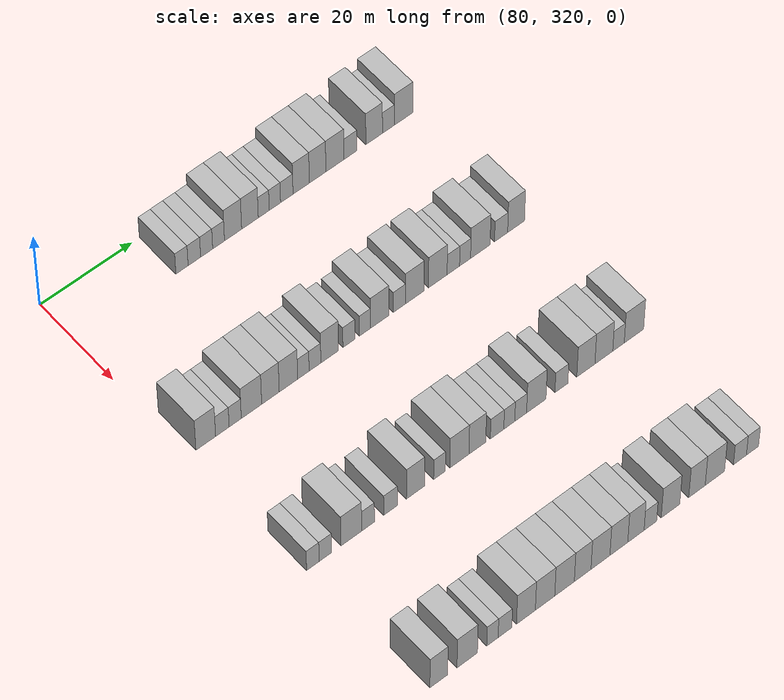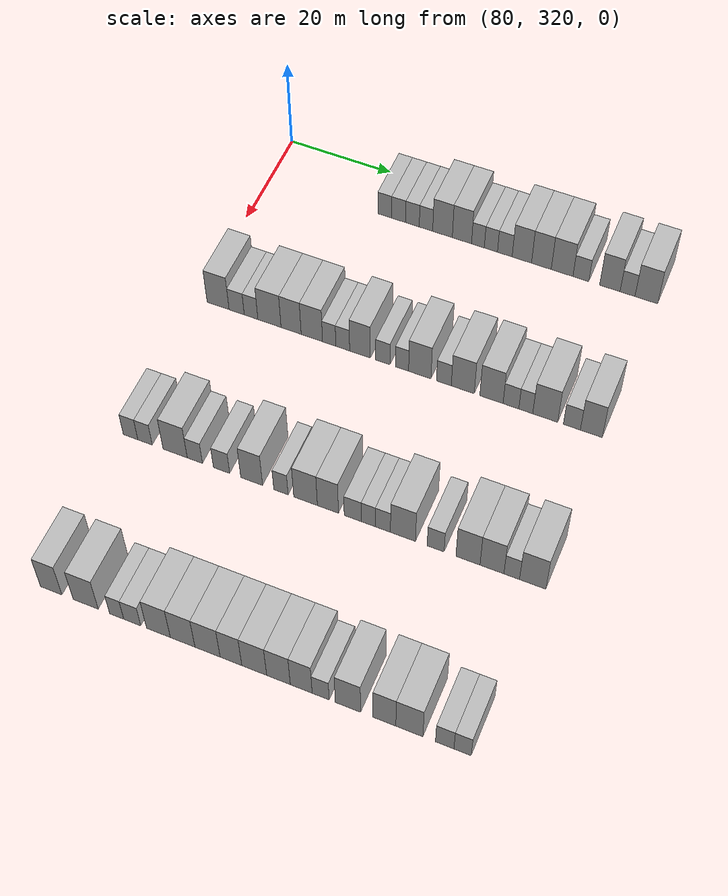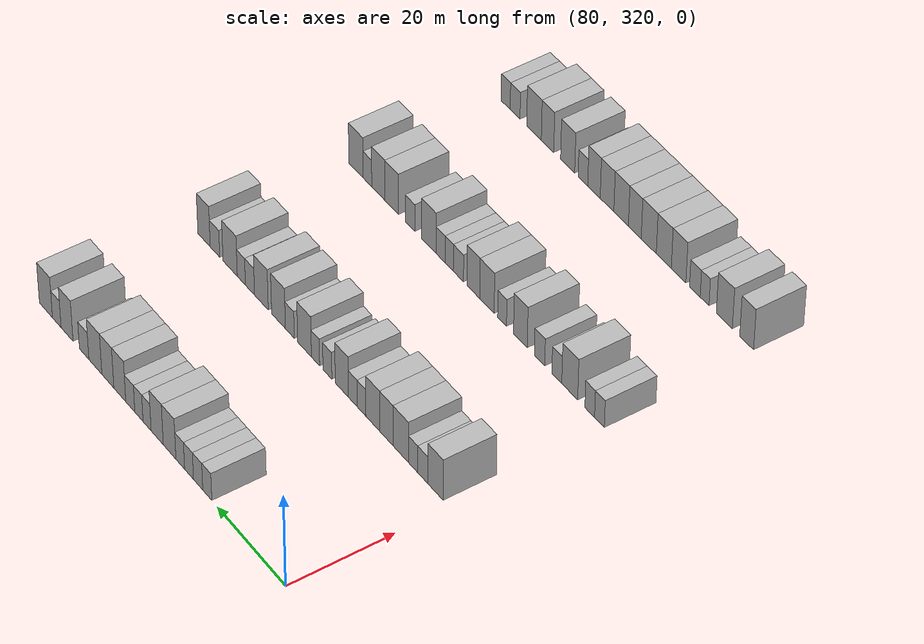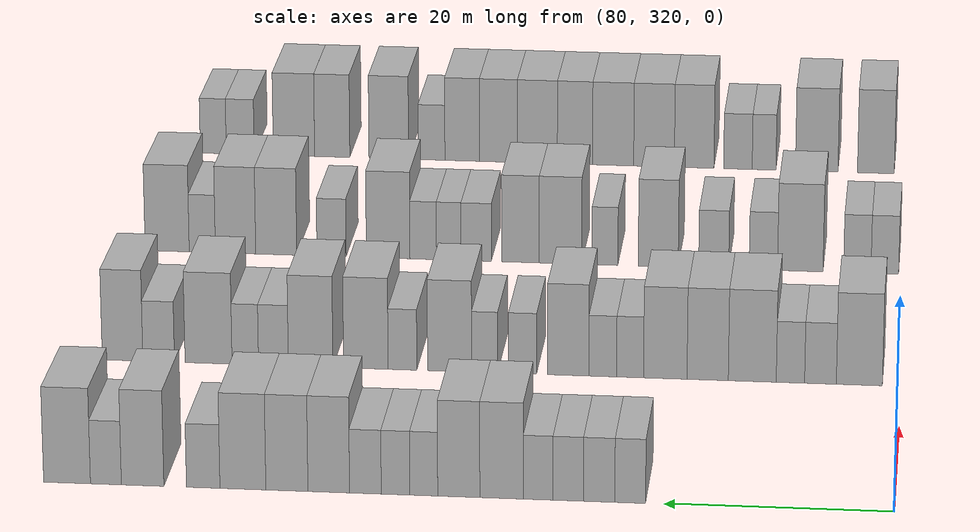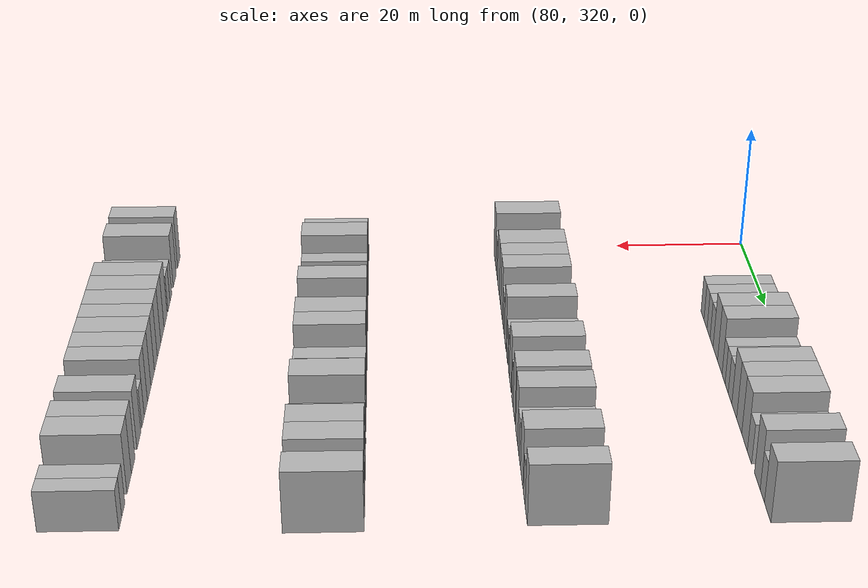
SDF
<sdf version="1.6">
 <world name="default">
  <model name="building_645">
   <static>1</static>
   <pose>85.0000 342.9460 0 0.000000 0.000000 0.000000</pose>
   <link name="link">
    <pose>0 0 3.00 0 0 0</pose>
    <collision name="collision"><geometry><box><size>10.0000 2.6826 6.0000</size></box></geometry></collision>
    <visual name="visual">
     <cast_shadows>0</cast_shadows>
     <geometry><box><size>10.0000 2.6826 6.0000</size></box></geometry>
     <material>
      <script>
       <uri>model://HANNAS_wall/materials/scripts</uri>
       <uri>model://HANNAS_wall/materials/textures</uri>
       <name>vrc/HANNAS_wall</name>
      </script>
     </material>
    </visual>
   </link>
  </model>
  <model name="building_646">
   <static>1</static>
   <pose>85.0000 345.6617 0 0.000000 0.000000 0.000000</pose>
   <link name="link">
    <pose>0 0 3.00 0 0 0</pose>
    <collision name="collision"><geometry><box><size>10.0000 2.7487 6.0000</size></box></geometry></collision>
    <visual name="visual">
     <cast_shadows>0</cast_shadows>
     <geometry><box><size>10.0000 2.7487 6.0000</size></box></geometry>
     <material>
      <script>
       <uri>model://HANNAS_wall/materials/scripts</uri>
       <uri>model://HANNAS_wall/materials/textures</uri>
       <name>vrc/HANNAS_wall</name>
      </script>
     </material>
    </visual>
   </link>
  </model>
  <model name="building_647">
   <static>1</static>
   <pose>85.0000 348.3660 0 0.000000 0.000000 0.000000</pose>
   <link name="link">
    <pose>0 0 3.00 0 0 0</pose>
    <collision name="collision"><geometry><box><size>10.0000 2.6599 6.0000</size></box></geometry></collision>
    <visual name="visual">
     <cast_shadows>0</cast_shadows>
     <geometry><box><size>10.0000 2.6599 6.0000</size></box></geometry>
     <material>
      <script>
       <uri>model://HANNAS_wall/materials/scripts</uri>
       <uri>model://HANNAS_wall/materials/textures</uri>
       <name>vrc/HANNAS_wall</name>
      </script>
     </material>
    </visual>
   </link>
  </model>
  <model name="building_648">
   <static>1</static>
   <pose>85.0000 350.9986 0 0.000000 0.000000 0.000000</pose>
   <link name="link">
    <pose>0 0 3.00 0 0 0</pose>
    <collision name="collision"><geometry><box><size>10.0000 2.6054 6.0000</size></box></geometry></collision>
    <visual name="visual">
     <cast_shadows>0</cast_shadows>
     <geometry><box><size>10.0000 2.6054 6.0000</size></box></geometry>
     <material>
      <script>
       <uri>model://HANNAS_wall/materials/scripts</uri>
       <uri>model://HANNAS_wall/materials/textures</uri>
       <name>vrc/HANNAS_wall</name>
      </script>
     </material>
    </visual>
   </link>
  </model>
  <model name="building_649">
   <static>1</static>
   <pose>85.0000 354.1984 0 0.000000 0.000000 0.000000</pose>
   <link name="link">
    <pose>0 0 4.50 0 0 0</pose>
    <collision name="collision"><geometry><box><size>10.0000 3.7942 9.0000</size></box></geometry></collision>
    <visual name="visual">
     <cast_shadows>0</cast_shadows>
     <geometry><box><size>10.0000 3.7942 9.0000</size></box></geometry>
     <material>
      <script>
       <uri>model://HANNAS_wall/materials/scripts</uri>
       <uri>model://HANNAS_wall/materials/textures</uri>
       <name>vrc/HANNAS_wall</name>
      </script>
     </material>
    </visual>
   </link>
  </model>
  <model name="building_650">
   <static>1</static>
   <pose>85.0000 357.9422 0 0.000000 0.000000 0.000000</pose>
   <link name="link">
    <pose>0 0 4.50 0 0 0</pose>
    <collision name="collision"><geometry><box><size>10.0000 3.6935 9.0000</size></box></geometry></collision>
    <visual name="visual">
     <cast_shadows>0</cast_shadows>
     <geometry><box><size>10.0000 3.6935 9.0000</size></box></geometry>
     <material>
      <script>
       <uri>model://HANNAS_wall/materials/scripts</uri>
       <uri>model://HANNAS_wall/materials/textures</uri>
       <name>vrc/HANNAS_wall</name>
      </script>
     </material>
    </visual>
   </link>
  </model>
  <model name="building_651">
   <static>1</static>
   <pose>85.0000 361.0117 0 0.000000 0.000000 0.000000</pose>
   <link name="link">
    <pose>0 0 3.00 0 0 0</pose>
    <collision name="collision"><geometry><box><size>10.0000 2.4453 6.0000</size></box></geometry></collision>
    <visual name="visual">
     <cast_shadows>0</cast_shadows>
     <geometry><box><size>10.0000 2.4453 6.0000</size></box></geometry>
     <material>
      <script>
       <uri>model://HANNAS_wall/materials/scripts</uri>
       <uri>model://HANNAS_wall/materials/textures</uri>
       <name>vrc/HANNAS_wall</name>
      </script>
     </material>
    </visual>
   </link>
  </model>
  <model name="building_652">
   <static>1</static>
   <pose>85.0000 363.4918 0 0.000000 0.000000 0.000000</pose>
   <link name="link">
    <pose>0 0 3.00 0 0 0</pose>
    <collision name="collision"><geometry><box><size>10.0000 2.5149 6.0000</size></box></geometry></collision>
    <visual name="visual">
     <cast_shadows>0</cast_shadows>
     <geometry><box><size>10.0000 2.5149 6.0000</size></box></geometry>
     <material>
      <script>
       <uri>model://HANNAS_wall/materials/scripts</uri>
       <uri>model://HANNAS_wall/materials/textures</uri>
       <name>vrc/HANNAS_wall</name>
      </script>
     </material>
    </visual>
   </link>
  </model>
  <model name="building_653">
   <static>1</static>
   <pose>85.0000 366.1435 0 0.000000 0.000000 0.000000</pose>
   <link name="link">
    <pose>0 0 3.00 0 0 0</pose>
    <collision name="collision"><geometry><box><size>10.0000 2.7886 6.0000</size></box></geometry></collision>
    <visual name="visual">
     <cast_shadows>0</cast_shadows>
     <geometry><box><size>10.0000 2.7886 6.0000</size></box></geometry>
     <material>
      <script>
       <uri>model://HANNAS_wall/materials/scripts</uri>
       <uri>model://HANNAS_wall/materials/textures</uri>
       <name>vrc/HANNAS_wall</name>
      </script>
     </material>
    </visual>
   </link>
  </model>
  <model name="building_654">
   <static>1</static>
   <pose>85.0000 369.3707 0 0.000000 0.000000 0.000000</pose>
   <link name="link">
    <pose>0 0 4.50 0 0 0</pose>
    <collision name="collision"><geometry><box><size>10.0000 3.6657 9.0000</size></box></geometry></collision>
    <visual name="visual">
     <cast_shadows>0</cast_shadows>
     <geometry><box><size>10.0000 3.6657 9.0000</size></box></geometry>
     <material>
      <script>
       <uri>model://HANNAS_wall/materials/scripts</uri>
       <uri>model://HANNAS_wall/materials/textures</uri>
       <name>vrc/HANNAS_wall</name>
      </script>
     </material>
    </visual>
   </link>
  </model>
  <model name="building_655">
   <static>1</static>
   <pose>85.0000 373.0613 0 0.000000 0.000000 0.000000</pose>
   <link name="link">
    <pose>0 0 4.50 0 0 0</pose>
    <collision name="collision"><geometry><box><size>10.0000 3.7155 9.0000</size></box></geometry></collision>
    <visual name="visual">
     <cast_shadows>0</cast_shadows>
     <geometry><box><size>10.0000 3.7155 9.0000</size></box></geometry>
     <material>
      <script>
       <uri>model://HANNAS_wall/materials/scripts</uri>
       <uri>model://HANNAS_wall/materials/textures</uri>
       <name>vrc/HANNAS_wall</name>
      </script>
     </material>
    </visual>
   </link>
  </model>
  <model name="building_656">
   <static>1</static>
   <pose>85.0000 376.9481 0 0.000000 0.000000 0.000000</pose>
   <link name="link">
    <pose>0 0 4.50 0 0 0</pose>
    <collision name="collision"><geometry><box><size>10.0000 4.0580 9.0000</size></box></geometry></collision>
    <visual name="visual">
     <cast_shadows>0</cast_shadows>
     <geometry><box><size>10.0000 4.0580 9.0000</size></box></geometry>
     <material>
      <script>
       <uri>model://HANNAS_wall/materials/scripts</uri>
       <uri>model://HANNAS_wall/materials/textures</uri>
       <name>vrc/HANNAS_wall</name>
      </script>
     </material>
    </visual>
   </link>
  </model>
  <model name="building_657">
   <static>1</static>
   <pose>85.0000 380.4580 0 0.000000 0.000000 0.000000</pose>
   <link name="link">
    <pose>0 0 3.00 0 0 0</pose>
    <collision name="collision"><geometry><box><size>10.0000 2.9619 6.0000</size></box></geometry></collision>
    <visual name="visual">
     <cast_shadows>0</cast_shadows>
     <geometry><box><size>10.0000 2.9619 6.0000</size></box></geometry>
     <material>
      <script>
       <uri>model://HANNAS_wall/materials/scripts</uri>
       <uri>model://HANNAS_wall/materials/textures</uri>
       <name>vrc/HANNAS_wall</name>
      </script>
     </material>
    </visual>
   </link>
  </model>
  <model name="building_658">
   <static>1</static>
   <pose>85.0000 385.8234 0 0.000000 0.000000 0.000000</pose>
   <link name="link">
    <pose>0 0 4.50 0 0 0</pose>
    <collision name="collision"><geometry><box><size>10.0000 3.7688 9.0000</size></box></geometry></collision>
    <visual name="visual">
     <cast_shadows>0</cast_shadows>
     <geometry><box><size>10.0000 3.7688 9.0000</size></box></geometry>
     <material>
      <script>
       <uri>model://HANNAS_wall/materials/scripts</uri>
       <uri>model://HANNAS_wall/materials/textures</uri>
       <name>vrc/HANNAS_wall</name>
      </script>
     </material>
    </visual>
   </link>
  </model>
  <model name="building_659">
   <static>1</static>
   <pose>85.0000 389.0815 0 0.000000 0.000000 0.000000</pose>
   <link name="link">
    <pose>0 0 3.00 0 0 0</pose>
    <collision name="collision"><geometry><box><size>10.0000 2.7474 6.0000</size></box></geometry></collision>
    <visual name="visual">
     <cast_shadows>0</cast_shadows>
     <geometry><box><size>10.0000 2.7474 6.0000</size></box></geometry>
     <material>
      <script>
       <uri>model://HANNAS_wall/materials/scripts</uri>
       <uri>model://HANNAS_wall/materials/textures</uri>
       <name>vrc/HANNAS_wall</name>
      </script>
     </material>
    </visual>
   </link>
  </model>
  <model name="building_660">
   <static>1</static>
   <pose>85.0000 392.5330 0 0.000000 0.000000 0.000000</pose>
   <link name="link">
    <pose>0 0 4.50 0 0 0</pose>
    <collision name="collision"><geometry><box><size>10.0000 4.1556 9.0000</size></box></geometry></collision>
    <visual name="visual">
     <cast_shadows>0</cast_shadows>
     <geometry><box><size>10.0000 4.1556 9.0000</size></box></geometry>
     <material>
      <script>
       <uri>model://HANNAS_wall/materials/scripts</uri>
       <uri>model://HANNAS_wall/materials/textures</uri>
       <name>vrc/HANNAS_wall</name>
      </script>
     </material>
    </visual>
   </link>
  </model>
  <model name="building_871">
   <static>1</static>
   <pose>115.0000 323.8803 0 0.000000 0.000000 0.000000</pose>
   <link name="link">
    <pose>0 0 4.50 0 0 0</pose>
    <collision name="collision"><geometry><box><size>10.0000 4.2369 9.0000</size></box></geometry></collision>
    <visual name="visual">
     <cast_shadows>0</cast_shadows>
     <geometry><box><size>10.0000 4.2369 9.0000</size></box></geometry>
     <material>
      <script>
       <uri>model://HANNAS_wall/materials/scripts</uri>
       <uri>model://HANNAS_wall/materials/textures</uri>
       <name>vrc/HANNAS_wall</name>
      </script>
     </material>
    </visual>
   </link>
  </model>
  <model name="building_872">
   <static>1</static>
   <pose>115.0000 327.4600 0 0.000000 0.000000 0.000000</pose>
   <link name="link">
    <pose>0 0 3.00 0 0 0</pose>
    <collision name="collision"><geometry><box><size>10.0000 2.9225 6.0000</size></box></geometry></collision>
    <visual name="visual">
     <cast_shadows>0</cast_shadows>
     <geometry><box><size>10.0000 2.9225 6.0000</size></box></geometry>
     <material>
      <script>
       <uri>model://HANNAS_wall/materials/scripts</uri>
       <uri>model://HANNAS_wall/materials/textures</uri>
       <name>vrc/HANNAS_wall</name>
      </script>
     </material>
    </visual>
   </link>
  </model>
  <model name="building_873">
   <static>1</static>
   <pose>115.0000 330.2283 0 0.000000 0.000000 0.000000</pose>
   <link name="link">
    <pose>0 0 3.00 0 0 0</pose>
    <collision name="collision"><geometry><box><size>10.0000 2.6142 6.0000</size></box></geometry></collision>
    <visual name="visual">
     <cast_shadows>0</cast_shadows>
     <geometry><box><size>10.0000 2.6142 6.0000</size></box></geometry>
     <material>
      <script>
       <uri>model://HANNAS_wall/materials/scripts</uri>
       <uri>model://HANNAS_wall/materials/textures</uri>
       <name>vrc/HANNAS_wall</name>
      </script>
     </material>
    </visual>
   </link>
  </model>
  <model name="building_874">
   <static>1</static>
   <pose>115.0000 333.7476 0 0.000000 0.000000 0.000000</pose>
   <link name="link">
    <pose>0 0 4.50 0 0 0</pose>
    <collision name="collision"><geometry><box><size>10.0000 4.4245 9.0000</size></box></geometry></collision>
    <visual name="visual">
     <cast_shadows>0</cast_shadows>
     <geometry><box><size>10.0000 4.4245 9.0000</size></box></geometry>
     <material>
      <script>
       <uri>model://HANNAS_wall/materials/scripts</uri>
       <uri>model://HANNAS_wall/materials/textures</uri>
       <name>vrc/HANNAS_wall</name>
      </script>
     </material>
    </visual>
   </link>
  </model>
  <model name="building_875">
   <static>1</static>
   <pose>115.0000 337.8681 0 0.000000 0.000000 0.000000</pose>
   <link name="link">
    <pose>0 0 4.50 0 0 0</pose>
    <collision name="collision"><geometry><box><size>10.0000 3.8164 9.0000</size></box></geometry></collision>
    <visual name="visual">
     <cast_shadows>0</cast_shadows>
     <geometry><box><size>10.0000 3.8164 9.0000</size></box></geometry>
     <material>
      <script>
       <uri>model://HANNAS_wall/materials/scripts</uri>
       <uri>model://HANNAS_wall/materials/textures</uri>
       <name>vrc/HANNAS_wall</name>
      </script>
     </material>
    </visual>
   </link>
  </model>
  <model name="building_876">
   <static>1</static>
   <pose>115.0000 341.7890 0 0.000000 0.000000 0.000000</pose>
   <link name="link">
    <pose>0 0 4.50 0 0 0</pose>
    <collision name="collision"><geometry><box><size>10.0000 4.0255 9.0000</size></box></geometry></collision>
    <visual name="visual">
     <cast_shadows>0</cast_shadows>
     <geometry><box><size>10.0000 4.0255 9.0000</size></box></geometry>
     <material>
      <script>
       <uri>model://HANNAS_wall/materials/scripts</uri>
       <uri>model://HANNAS_wall/materials/textures</uri>
       <name>vrc/HANNAS_wall</name>
      </script>
     </material>
    </visual>
   </link>
  </model>
  <model name="building_877">
   <static>1</static>
   <pose>115.0000 345.0506 0 0.000000 0.000000 0.000000</pose>
   <link name="link">
    <pose>0 0 3.00 0 0 0</pose>
    <collision name="collision"><geometry><box><size>10.0000 2.4976 6.0000</size></box></geometry></collision>
    <visual name="visual">
     <cast_shadows>0</cast_shadows>
     <geometry><box><size>10.0000 2.4976 6.0000</size></box></geometry>
     <material>
      <script>
       <uri>model://HANNAS_wall/materials/scripts</uri>
       <uri>model://HANNAS_wall/materials/textures</uri>
       <name>vrc/HANNAS_wall</name>
      </script>
     </material>
    </visual>
   </link>
  </model>
  <model name="building_878">
   <static>1</static>
   <pose>115.0000 347.5885 0 0.000000 0.000000 0.000000</pose>
   <link name="link">
    <pose>0 0 3.00 0 0 0</pose>
    <collision name="collision"><geometry><box><size>10.0000 2.5782 6.0000</size></box></geometry></collision>
    <visual name="visual">
     <cast_shadows>0</cast_shadows>
     <geometry><box><size>10.0000 2.5782 6.0000</size></box></geometry>
     <material>
      <script>
       <uri>model://HANNAS_wall/materials/scripts</uri>
       <uri>model://HANNAS_wall/materials/textures</uri>
       <name>vrc/HANNAS_wall</name>
      </script>
     </material>
    </visual>
   </link>
  </model>
  <model name="building_879">
   <static>1</static>
   <pose>115.0000 350.8021 0 0.000000 0.000000 0.000000</pose>
   <link name="link">
    <pose>0 0 4.50 0 0 0</pose>
    <collision name="collision"><geometry><box><size>10.0000 3.8489 9.0000</size></box></geometry></collision>
    <visual name="visual">
     <cast_shadows>0</cast_shadows>
     <geometry><box><size>10.0000 3.8489 9.0000</size></box></geometry>
     <material>
      <script>
       <uri>model://HANNAS_wall/materials/scripts</uri>
       <uri>model://HANNAS_wall/materials/textures</uri>
       <name>vrc/HANNAS_wall</name>
      </script>
     </material>
    </visual>
   </link>
  </model>
  <model name="building_880">
   <static>1</static>
   <pose>115.0000 355.0364 0 0.000000 0.000000 0.000000</pose>
   <link name="link">
    <pose>0 0 3.00 0 0 0</pose>
    <collision name="collision"><geometry><box><size>10.0000 2.6198 6.0000</size></box></geometry></collision>
    <visual name="visual">
     <cast_shadows>0</cast_shadows>
     <geometry><box><size>10.0000 2.6198 6.0000</size></box></geometry>
     <material>
      <script>
       <uri>model://HANNAS_wall/materials/scripts</uri>
       <uri>model://HANNAS_wall/materials/textures</uri>
       <name>vrc/HANNAS_wall</name>
      </script>
     </material>
    </visual>
   </link>
  </model>
  <model name="building_881">
   <static>1</static>
   <pose>115.0000 358.5620 0 0.000000 0.000000 0.000000</pose>
   <link name="link">
    <pose>0 0 3.00 0 0 0</pose>
    <collision name="collision"><geometry><box><size>10.0000 2.4314 6.0000</size></box></geometry></collision>
    <visual name="visual">
     <cast_shadows>0</cast_shadows>
     <geometry><box><size>10.0000 2.4314 6.0000</size></box></geometry>
     <material>
      <script>
       <uri>model://HANNAS_wall/materials/scripts</uri>
       <uri>model://HANNAS_wall/materials/textures</uri>
       <name>vrc/HANNAS_wall</name>
      </script>
     </material>
    </visual>
   </link>
  </model>
  <model name="building_882">
   <static>1</static>
   <pose>115.0000 361.8263 0 0.000000 0.000000 0.000000</pose>
   <link name="link">
    <pose>0 0 4.50 0 0 0</pose>
    <collision name="collision"><geometry><box><size>10.0000 4.0972 9.0000</size></box></geometry></collision>
    <visual name="visual">
     <cast_shadows>0</cast_shadows>
     <geometry><box><size>10.0000 4.0972 9.0000</size></box></geometry>
     <material>
      <script>
       <uri>model://HANNAS_wall/materials/scripts</uri>
       <uri>model://HANNAS_wall/materials/textures</uri>
       <name>vrc/HANNAS_wall</name>
      </script>
     </material>
    </visual>
   </link>
  </model>
  <model name="building_883">
   <static>1</static>
   <pose>115.0000 366.2160 0 0.000000 0.000000 0.000000</pose>
   <link name="link">
    <pose>0 0 3.00 0 0 0</pose>
    <collision name="collision"><geometry><box><size>10.0000 2.6822 6.0000</size></box></geometry></collision>
    <visual name="visual">
     <cast_shadows>0</cast_shadows>
     <geometry><box><size>10.0000 2.6822 6.0000</size></box></geometry>
     <material>
      <script>
       <uri>model://HANNAS_wall/materials/scripts</uri>
       <uri>model://HANNAS_wall/materials/textures</uri>
       <name>vrc/HANNAS_wall</name>
      </script>
     </material>
    </visual>
   </link>
  </model>
  <model name="building_884">
   <static>1</static>
   <pose>115.0000 369.6368 0 0.000000 0.000000 0.000000</pose>
   <link name="link">
    <pose>0 0 4.50 0 0 0</pose>
    <collision name="collision"><geometry><box><size>10.0000 4.1593 9.0000</size></box></geometry></collision>
    <visual name="visual">
     <cast_shadows>0</cast_shadows>
     <geometry><box><size>10.0000 4.1593 9.0000</size></box></geometry>
     <material>
      <script>
       <uri>model://HANNAS_wall/materials/scripts</uri>
       <uri>model://HANNAS_wall/materials/textures</uri>
       <name>vrc/HANNAS_wall</name>
      </script>
     </material>
    </visual>
   </link>
  </model>
  <model name="building_885">
   <static>1</static>
   <pose>115.0000 374.8030 0 0.000000 0.000000 0.000000</pose>
   <link name="link">
    <pose>0 0 4.50 0 0 0</pose>
    <collision name="collision"><geometry><box><size>10.0000 4.1731 9.0000</size></box></geometry></collision>
    <visual name="visual">
     <cast_shadows>0</cast_shadows>
     <geometry><box><size>10.0000 4.1731 9.0000</size></box></geometry>
     <material>
      <script>
       <uri>model://HANNAS_wall/materials/scripts</uri>
       <uri>model://HANNAS_wall/materials/textures</uri>
       <name>vrc/HANNAS_wall</name>
      </script>
     </material>
    </visual>
   </link>
  </model>
  <model name="building_886">
   <static>1</static>
   <pose>115.0000 378.2895 0 0.000000 0.000000 0.000000</pose>
   <link name="link">
    <pose>0 0 3.00 0 0 0</pose>
    <collision name="collision"><geometry><box><size>10.0000 2.8000 6.0000</size></box></geometry></collision>
    <visual name="visual">
     <cast_shadows>0</cast_shadows>
     <geometry><box><size>10.0000 2.8000 6.0000</size></box></geometry>
     <material>
      <script>
       <uri>model://HANNAS_wall/materials/scripts</uri>
       <uri>model://HANNAS_wall/materials/textures</uri>
       <name>vrc/HANNAS_wall</name>
      </script>
     </material>
    </visual>
   </link>
  </model>
  <model name="building_887">
   <static>1</static>
   <pose>115.0000 380.9318 0 0.000000 0.000000 0.000000</pose>
   <link name="link">
    <pose>0 0 3.00 0 0 0</pose>
    <collision name="collision"><geometry><box><size>10.0000 2.4845 6.0000</size></box></geometry></collision>
    <visual name="visual">
     <cast_shadows>0</cast_shadows>
     <geometry><box><size>10.0000 2.4845 6.0000</size></box></geometry>
     <material>
      <script>
       <uri>model://HANNAS_wall/materials/scripts</uri>
       <uri>model://HANNAS_wall/materials/textures</uri>
       <name>vrc/HANNAS_wall</name>
      </script>
     </material>
    </visual>
   </link>
  </model>
  <model name="building_888">
   <static>1</static>
   <pose>115.0000 384.3796 0 0.000000 0.000000 0.000000</pose>
   <link name="link">
    <pose>0 0 4.50 0 0 0</pose>
    <collision name="collision"><geometry><box><size>10.0000 4.4112 9.0000</size></box></geometry></collision>
    <visual name="visual">
     <cast_shadows>0</cast_shadows>
     <geometry><box><size>10.0000 4.4112 9.0000</size></box></geometry>
     <material>
      <script>
       <uri>model://HANNAS_wall/materials/scripts</uri>
       <uri>model://HANNAS_wall/materials/textures</uri>
       <name>vrc/HANNAS_wall</name>
      </script>
     </material>
    </visual>
   </link>
  </model>
  <model name="building_889">
   <static>1</static>
   <pose>115.0000 389.0710 0 0.000000 0.000000 0.000000</pose>
   <link name="link">
    <pose>0 0 3.00 0 0 0</pose>
    <collision name="collision"><geometry><box><size>10.0000 2.9715 6.0000</size></box></geometry></collision>
    <visual name="visual">
     <cast_shadows>0</cast_shadows>
     <geometry><box><size>10.0000 2.9715 6.0000</size></box></geometry>
     <material>
      <script>
       <uri>model://HANNAS_wall/materials/scripts</uri>
       <uri>model://HANNAS_wall/materials/textures</uri>
       <name>vrc/HANNAS_wall</name>
      </script>
     </material>
    </visual>
   </link>
  </model>
  <model name="building_890">
   <static>1</static>
   <pose>115.0000 392.4711 0 0.000000 0.000000 0.000000</pose>
   <link name="link">
    <pose>0 0 4.50 0 0 0</pose>
    <collision name="collision"><geometry><box><size>10.0000 3.8289 9.0000</size></box></geometry></collision>
    <visual name="visual">
     <cast_shadows>0</cast_shadows>
     <geometry><box><size>10.0000 3.8289 9.0000</size></box></geometry>
     <material>
      <script>
       <uri>model://HANNAS_wall/materials/scripts</uri>
       <uri>model://HANNAS_wall/materials/textures</uri>
       <name>vrc/HANNAS_wall</name>
      </script>
     </material>
    </visual>
   </link>
  </model>
  <model name="building_1100">
   <static>1</static>
   <pose>145.0000 322.2565 0 0.000000 0.000000 0.000000</pose>
   <link name="link">
    <pose>0 0 3.00 0 0 0</pose>
    <collision name="collision"><geometry><box><size>10.0000 2.6858 6.0000</size></box></geometry></collision>
    <visual name="visual">
     <cast_shadows>0</cast_shadows>
     <geometry><box><size>10.0000 2.6858 6.0000</size></box></geometry>
     <material>
      <script>
       <uri>model://HANNAS_wall/materials/scripts</uri>
       <uri>model://HANNAS_wall/materials/textures</uri>
       <name>vrc/HANNAS_wall</name>
      </script>
     </material>
    </visual>
   </link>
  </model>
  <model name="building_1101">
   <static>1</static>
   <pose>145.0000 324.9366 0 0.000000 0.000000 0.000000</pose>
   <link name="link">
    <pose>0 0 3.00 0 0 0</pose>
    <collision name="collision"><geometry><box><size>10.0000 2.6743 6.0000</size></box></geometry></collision>
    <visual name="visual">
     <cast_shadows>0</cast_shadows>
     <geometry><box><size>10.0000 2.6743 6.0000</size></box></geometry>
     <material>
      <script>
       <uri>model://HANNAS_wall/materials/scripts</uri>
       <uri>model://HANNAS_wall/materials/textures</uri>
       <name>vrc/HANNAS_wall</name>
      </script>
     </material>
    </visual>
   </link>
  </model>
  <model name="building_1102">
   <static>1</static>
   <pose>145.0000 330.4941 0 0.000000 0.000000 0.000000</pose>
   <link name="link">
    <pose>0 0 4.50 0 0 0</pose>
    <collision name="collision"><geometry><box><size>10.0000 4.4407 9.0000</size></box></geometry></collision>
    <visual name="visual">
     <cast_shadows>0</cast_shadows>
     <geometry><box><size>10.0000 4.4407 9.0000</size></box></geometry>
     <material>
      <script>
       <uri>model://HANNAS_wall/materials/scripts</uri>
       <uri>model://HANNAS_wall/materials/textures</uri>
       <name>vrc/HANNAS_wall</name>
      </script>
     </material>
    </visual>
   </link>
  </model>
  <model name="building_1103">
   <static>1</static>
   <pose>145.0000 334.0988 0 0.000000 0.000000 0.000000</pose>
   <link name="link">
    <pose>0 0 3.00 0 0 0</pose>
    <collision name="collision"><geometry><box><size>10.0000 2.7689 6.0000</size></box></geometry></collision>
    <visual name="visual">
     <cast_shadows>0</cast_shadows>
     <geometry><box><size>10.0000 2.7689 6.0000</size></box></geometry>
     <material>
      <script>
       <uri>model://HANNAS_wall/materials/scripts</uri>
       <uri>model://HANNAS_wall/materials/textures</uri>
       <name>vrc/HANNAS_wall</name>
      </script>
     </material>
    </visual>
   </link>
  </model>
  <model name="building_1104">
   <static>1</static>
   <pose>145.0000 338.9540 0 0.000000 0.000000 0.000000</pose>
   <link name="link">
    <pose>0 0 3.00 0 0 0</pose>
    <collision name="collision"><geometry><box><size>10.0000 2.9414 6.0000</size></box></geometry></collision>
    <visual name="visual">
     <cast_shadows>0</cast_shadows>
     <geometry><box><size>10.0000 2.9414 6.0000</size></box></geometry>
     <material>
      <script>
       <uri>model://HANNAS_wall/materials/scripts</uri>
       <uri>model://HANNAS_wall/materials/textures</uri>
       <name>vrc/HANNAS_wall</name>
      </script>
     </material>
    </visual>
   </link>
  </model>
  <model name="building_1105">
   <static>1</static>
   <pose>145.0000 344.3824 0 0.000000 0.000000 0.000000</pose>
   <link name="link">
    <pose>0 0 4.50 0 0 0</pose>
    <collision name="collision"><geometry><box><size>10.0000 3.9154 9.0000</size></box></geometry></collision>
    <visual name="visual">
     <cast_shadows>0</cast_shadows>
     <geometry><box><size>10.0000 3.9154 9.0000</size></box></geometry>
     <material>
      <script>
       <uri>model://HANNAS_wall/materials/scripts</uri>
       <uri>model://HANNAS_wall/materials/textures</uri>
       <name>vrc/HANNAS_wall</name>
      </script>
     </material>
    </visual>
   </link>
  </model>
  <model name="building_1106">
   <static>1</static>
   <pose>145.0000 349.6164 0 0.000000 0.000000 0.000000</pose>
   <link name="link">
    <pose>0 0 3.00 0 0 0</pose>
    <collision name="collision"><geometry><box><size>10.0000 2.5526 6.0000</size></box></geometry></collision>
    <visual name="visual">
     <cast_shadows>0</cast_shadows>
     <geometry><box><size>10.0000 2.5526 6.0000</size></box></geometry>
     <material>
      <script>
       <uri>model://HANNAS_wall/materials/scripts</uri>
       <uri>model://HANNAS_wall/materials/textures</uri>
       <name>vrc/HANNAS_wall</name>
      </script>
     </material>
    </visual>
   </link>
  </model>
  <model name="building_1107">
   <static>1</static>
   <pose>145.0000 353.9836 0 0.000000 0.000000 0.000000</pose>
   <link name="link">
    <pose>0 0 4.50 0 0 0</pose>
    <collision name="collision"><geometry><box><size>10.0000 4.1817 9.0000</size></box></geometry></collision>
    <visual name="visual">
     <cast_shadows>0</cast_shadows>
     <geometry><box><size>10.0000 4.1817 9.0000</size></box></geometry>
     <material>
      <script>
       <uri>model://HANNAS_wall/materials/scripts</uri>
       <uri>model://HANNAS_wall/materials/textures</uri>
       <name>vrc/HANNAS_wall</name>
      </script>
     </material>
    </visual>
   </link>
  </model>
  <model name="building_1108">
   <static>1</static>
   <pose>145.0000 357.9286 0 0.000000 0.000000 0.000000</pose>
   <link name="link">
    <pose>0 0 4.50 0 0 0</pose>
    <collision name="collision"><geometry><box><size>10.0000 3.7084 9.0000</size></box></geometry></collision>
    <visual name="visual">
     <cast_shadows>0</cast_shadows>
     <geometry><box><size>10.0000 3.7084 9.0000</size></box></geometry>
     <material>
      <script>
       <uri>model://HANNAS_wall/materials/scripts</uri>
       <uri>model://HANNAS_wall/materials/textures</uri>
       <name>vrc/HANNAS_wall</name>
      </script>
     </material>
    </visual>
   </link>
  </model>
  <model name="building_1109">
   <static>1</static>
   <pose>145.0000 362.2733 0 0.000000 0.000000 0.000000</pose>
   <link name="link">
    <pose>0 0 3.00 0 0 0</pose>
    <collision name="collision"><geometry><box><size>10.0000 2.9811 6.0000</size></box></geometry></collision>
    <visual name="visual">
     <cast_shadows>0</cast_shadows>
     <geometry><box><size>10.0000 2.9811 6.0000</size></box></geometry>
     <material>
      <script>
       <uri>model://HANNAS_wall/materials/scripts</uri>
       <uri>model://HANNAS_wall/materials/textures</uri>
       <name>vrc/HANNAS_wall</name>
      </script>
     </material>
    </visual>
   </link>
  </model>
  <model name="building_1110">
   <static>1</static>
   <pose>145.0000 364.9773 0 0.000000 0.000000 0.000000</pose>
   <link name="link">
    <pose>0 0 3.00 0 0 0</pose>
    <collision name="collision"><geometry><box><size>10.0000 2.4268 6.0000</size></box></geometry></collision>
    <visual name="visual">
     <cast_shadows>0</cast_shadows>
     <geometry><box><size>10.0000 2.4268 6.0000</size></box></geometry>
     <material>
      <script>
       <uri>model://HANNAS_wall/materials/scripts</uri>
       <uri>model://HANNAS_wall/materials/textures</uri>
       <name>vrc/HANNAS_wall</name>
      </script>
     </material>
    </visual>
   </link>
  </model>
  <model name="building_1111">
   <static>1</static>
   <pose>145.0000 367.5016 0 0.000000 0.000000 0.000000</pose>
   <link name="link">
    <pose>0 0 3.00 0 0 0</pose>
    <collision name="collision"><geometry><box><size>10.0000 2.6219 6.0000</size></box></geometry></collision>
    <visual name="visual">
     <cast_shadows>0</cast_shadows>
     <geometry><box><size>10.0000 2.6219 6.0000</size></box></geometry>
     <material>
      <script>
       <uri>model://HANNAS_wall/materials/scripts</uri>
       <uri>model://HANNAS_wall/materials/textures</uri>
       <name>vrc/HANNAS_wall</name>
      </script>
     </material>
    </visual>
   </link>
  </model>
  <model name="building_1112">
   <static>1</static>
   <pose>145.0000 370.9667 0 0.000000 0.000000 0.000000</pose>
   <link name="link">
    <pose>0 0 4.50 0 0 0</pose>
    <collision name="collision"><geometry><box><size>10.0000 4.3083 9.0000</size></box></geometry></collision>
    <visual name="visual">
     <cast_shadows>0</cast_shadows>
     <geometry><box><size>10.0000 4.3083 9.0000</size></box></geometry>
     <material>
      <script>
       <uri>model://HANNAS_wall/materials/scripts</uri>
       <uri>model://HANNAS_wall/materials/textures</uri>
       <name>vrc/HANNAS_wall</name>
      </script>
     </material>
    </visual>
   </link>
  </model>
  <model name="building_1113">
   <static>1</static>
   <pose>145.0000 376.5680 0 0.000000 0.000000 0.000000</pose>
   <link name="link">
    <pose>0 0 3.00 0 0 0</pose>
    <collision name="collision"><geometry><box><size>10.0000 2.8942 6.0000</size></box></geometry></collision>
    <visual name="visual">
     <cast_shadows>0</cast_shadows>
     <geometry><box><size>10.0000 2.8942 6.0000</size></box></geometry>
     <material>
      <script>
       <uri>model://HANNAS_wall/materials/scripts</uri>
       <uri>model://HANNAS_wall/materials/textures</uri>
       <name>vrc/HANNAS_wall</name>
      </script>
     </material>
    </visual>
   </link>
  </model>
  <model name="building_1114">
   <static>1</static>
   <pose>145.0000 382.0502 0 0.000000 0.000000 0.000000</pose>
   <link name="link">
    <pose>0 0 4.50 0 0 0</pose>
    <collision name="collision"><geometry><box><size>10.0000 4.0703 9.0000</size></box></geometry></collision>
    <visual name="visual">
     <cast_shadows>0</cast_shadows>
     <geometry><box><size>10.0000 4.0703 9.0000</size></box></geometry>
     <material>
      <script>
       <uri>model://HANNAS_wall/materials/scripts</uri>
       <uri>model://HANNAS_wall/materials/textures</uri>
       <name>vrc/HANNAS_wall</name>
      </script>
     </material>
    </visual>
   </link>
  </model>
  <model name="building_1115">
   <static>1</static>
   <pose>145.0000 386.0904 0 0.000000 0.000000 0.000000</pose>
   <link name="link">
    <pose>0 0 4.50 0 0 0</pose>
    <collision name="collision"><geometry><box><size>10.0000 4.0100 9.0000</size></box></geometry></collision>
    <visual name="visual">
     <cast_shadows>0</cast_shadows>
     <geometry><box><size>10.0000 4.0100 9.0000</size></box></geometry>
     <material>
      <script>
       <uri>model://HANNAS_wall/materials/scripts</uri>
       <uri>model://HANNAS_wall/materials/textures</uri>
       <name>vrc/HANNAS_wall</name>
      </script>
     </material>
    </visual>
   </link>
  </model>
  <model name="building_1116">
   <static>1</static>
   <pose>145.0000 389.3971 0 0.000000 0.000000 0.000000</pose>
   <link name="link">
    <pose>0 0 3.00 0 0 0</pose>
    <collision name="collision"><geometry><box><size>10.0000 2.6034 6.0000</size></box></geometry></collision>
    <visual name="visual">
     <cast_shadows>0</cast_shadows>
     <geometry><box><size>10.0000 2.6034 6.0000</size></box></geometry>
     <material>
      <script>
       <uri>model://HANNAS_wall/materials/scripts</uri>
       <uri>model://HANNAS_wall/materials/textures</uri>
       <name>vrc/HANNAS_wall</name>
      </script>
     </material>
    </visual>
   </link>
  </model>
  <model name="building_1117">
   <static>1</static>
   <pose>145.0000 392.8926 0 0.000000 0.000000 0.000000</pose>
   <link name="link">
    <pose>0 0 4.50 0 0 0</pose>
    <collision name="collision"><geometry><box><size>10.0000 4.3876 9.0000</size></box></geometry></collision>
    <visual name="visual">
     <cast_shadows>0</cast_shadows>
     <geometry><box><size>10.0000 4.3876 9.0000</size></box></geometry>
     <material>
      <script>
       <uri>model://HANNAS_wall/materials/scripts</uri>
       <uri>model://HANNAS_wall/materials/textures</uri>
       <name>vrc/HANNAS_wall</name>
      </script>
     </material>
    </visual>
   </link>
  </model>
  <model name="building_1327">
   <static>1</static>
   <pose>175.0000 323.8957 0 0.000000 0.000000 0.000000</pose>
   <link name="link">
    <pose>0 0 4.50 0 0 0</pose>
    <collision name="collision"><geometry><box><size>10.0000 3.7814 9.0000</size></box></geometry></collision>
    <visual name="visual">
     <cast_shadows>0</cast_shadows>
     <geometry><box><size>10.0000 3.7814 9.0000</size></box></geometry>
     <material>
      <script>
       <uri>model://HANNAS_wall/materials/scripts</uri>
       <uri>model://HANNAS_wall/materials/textures</uri>
       <name>vrc/HANNAS_wall</name>
      </script>
     </material>
    </visual>
   </link>
  </model>
  <model name="building_1328">
   <static>1</static>
   <pose>175.0000 329.9784 0 0.000000 0.000000 0.000000</pose>
   <link name="link">
    <pose>0 0 4.50 0 0 0</pose>
    <collision name="collision"><geometry><box><size>10.0000 4.3840 9.0000</size></box></geometry></collision>
    <visual name="visual">
     <cast_shadows>0</cast_shadows>
     <geometry><box><size>10.0000 4.3840 9.0000</size></box></geometry>
     <material>
      <script>
       <uri>model://HANNAS_wall/materials/scripts</uri>
       <uri>model://HANNAS_wall/materials/textures</uri>
       <name>vrc/HANNAS_wall</name>
      </script>
     </material>
    </visual>
   </link>
  </model>
  <model name="building_1329">
   <static>1</static>
   <pose>175.0000 335.3959 0 0.000000 0.000000 0.000000</pose>
   <link name="link">
    <pose>0 0 3.00 0 0 0</pose>
    <collision name="collision"><geometry><box><size>10.0000 2.4509 6.0000</size></box></geometry></collision>
    <visual name="visual">
     <cast_shadows>0</cast_shadows>
     <geometry><box><size>10.0000 2.4509 6.0000</size></box></geometry>
     <material>
      <script>
       <uri>model://HANNAS_wall/materials/scripts</uri>
       <uri>model://HANNAS_wall/materials/textures</uri>
       <name>vrc/HANNAS_wall</name>
      </script>
     </material>
    </visual>
   </link>
  </model>
  <model name="building_1330">
   <static>1</static>
   <pose>175.0000 338.0941 0 0.000000 0.000000 0.000000</pose>
   <link name="link">
    <pose>0 0 3.00 0 0 0</pose>
    <collision name="collision"><geometry><box><size>10.0000 2.9456 6.0000</size></box></geometry></collision>
    <visual name="visual">
     <cast_shadows>0</cast_shadows>
     <geometry><box><size>10.0000 2.9456 6.0000</size></box></geometry>
     <material>
      <script>
       <uri>model://HANNAS_wall/materials/scripts</uri>
       <uri>model://HANNAS_wall/materials/textures</uri>
       <name>vrc/HANNAS_wall</name>
      </script>
     </material>
    </visual>
   </link>
  </model>
  <model name="building_1331">
   <static>1</static>
   <pose>175.0000 342.6101 0 0.000000 0.000000 0.000000</pose>
   <link name="link">
    <pose>0 0 4.50 0 0 0</pose>
    <collision name="collision"><geometry><box><size>10.0000 4.0863 9.0000</size></box></geometry></collision>
    <visual name="visual">
     <cast_shadows>0</cast_shadows>
     <geometry><box><size>10.0000 4.0863 9.0000</size></box></geometry>
     <material>
      <script>
       <uri>model://HANNAS_wall/materials/scripts</uri>
       <uri>model://HANNAS_wall/materials/textures</uri>
       <name>vrc/HANNAS_wall</name>
      </script>
     </material>
    </visual>
   </link>
  </model>
  <model name="building_1332">
   <static>1</static>
   <pose>175.0000 346.7580 0 0.000000 0.000000 0.000000</pose>
   <link name="link">
    <pose>0 0 4.50 0 0 0</pose>
    <collision name="collision"><geometry><box><size>10.0000 4.2095 9.0000</size></box></geometry></collision>
    <visual name="visual">
     <cast_shadows>0</cast_shadows>
     <geometry><box><size>10.0000 4.2095 9.0000</size></box></geometry>
     <material>
      <script>
       <uri>model://HANNAS_wall/materials/scripts</uri>
       <uri>model://HANNAS_wall/materials/textures</uri>
       <name>vrc/HANNAS_wall</name>
      </script>
     </material>
    </visual>
   </link>
  </model>
  <model name="building_1333">
   <static>1</static>
   <pose>175.0000 350.9949 0 0.000000 0.000000 0.000000</pose>
   <link name="link">
    <pose>0 0 4.50 0 0 0</pose>
    <collision name="collision"><geometry><box><size>10.0000 4.2644 9.0000</size></box></geometry></collision>
    <visual name="visual">
     <cast_shadows>0</cast_shadows>
     <geometry><box><size>10.0000 4.2644 9.0000</size></box></geometry>
     <material>
      <script>
       <uri>model://HANNAS_wall/materials/scripts</uri>
       <uri>model://HANNAS_wall/materials/textures</uri>
       <name>vrc/HANNAS_wall</name>
      </script>
     </material>
    </visual>
   </link>
  </model>
  <model name="building_1334">
   <static>1</static>
   <pose>175.0000 354.9507 0 0.000000 0.000000 0.000000</pose>
   <link name="link">
    <pose>0 0 4.50 0 0 0</pose>
    <collision name="collision"><geometry><box><size>10.0000 3.6472 9.0000</size></box></geometry></collision>
    <visual name="visual">
     <cast_shadows>0</cast_shadows>
     <geometry><box><size>10.0000 3.6472 9.0000</size></box></geometry>
     <material>
      <script>
       <uri>model://HANNAS_wall/materials/scripts</uri>
       <uri>model://HANNAS_wall/materials/textures</uri>
       <name>vrc/HANNAS_wall</name>
      </script>
     </material>
    </visual>
   </link>
  </model>
  <model name="building_1335">
   <static>1</static>
   <pose>175.0000 358.8512 0 0.000000 0.000000 0.000000</pose>
   <link name="link">
    <pose>0 0 4.50 0 0 0</pose>
    <collision name="collision"><geometry><box><size>10.0000 4.1539 9.0000</size></box></geometry></collision>
    <visual name="visual">
     <cast_shadows>0</cast_shadows>
     <geometry><box><size>10.0000 4.1539 9.0000</size></box></geometry>
     <material>
      <script>
       <uri>model://HANNAS_wall/materials/scripts</uri>
       <uri>model://HANNAS_wall/materials/textures</uri>
       <name>vrc/HANNAS_wall</name>
      </script>
     </material>
    </visual>
   </link>
  </model>
  <model name="building_1336">
   <static>1</static>
   <pose>175.0000 362.8911 0 0.000000 0.000000 0.000000</pose>
   <link name="link">
    <pose>0 0 4.50 0 0 0</pose>
    <collision name="collision"><geometry><box><size>10.0000 3.9258 9.0000</size></box></geometry></collision>
    <visual name="visual">
     <cast_shadows>0</cast_shadows>
     <geometry><box><size>10.0000 3.9258 9.0000</size></box></geometry>
     <material>
      <script>
       <uri>model://HANNAS_wall/materials/scripts</uri>
       <uri>model://HANNAS_wall/materials/textures</uri>
       <name>vrc/HANNAS_wall</name>
      </script>
     </material>
    </visual>
   </link>
  </model>
  <model name="building_1337">
   <static>1</static>
   <pose>175.0000 366.6560 0 0.000000 0.000000 0.000000</pose>
   <link name="link">
    <pose>0 0 4.50 0 0 0</pose>
    <collision name="collision"><geometry><box><size>10.0000 3.6041 9.0000</size></box></geometry></collision>
    <visual name="visual">
     <cast_shadows>0</cast_shadows>
     <geometry><box><size>10.0000 3.6041 9.0000</size></box></geometry>
     <material>
      <script>
       <uri>model://HANNAS_wall/materials/scripts</uri>
       <uri>model://HANNAS_wall/materials/textures</uri>
       <name>vrc/HANNAS_wall</name>
      </script>
     </material>
    </visual>
   </link>
  </model>
  <model name="building_1338">
   <static>1</static>
   <pose>175.0000 369.8531 0 0.000000 0.000000 0.000000</pose>
   <link name="link">
    <pose>0 0 3.00 0 0 0</pose>
    <collision name="collision"><geometry><box><size>10.0000 2.7901 6.0000</size></box></geometry></collision>
    <visual name="visual">
     <cast_shadows>0</cast_shadows>
     <geometry><box><size>10.0000 2.7901 6.0000</size></box></geometry>
     <material>
      <script>
       <uri>model://HANNAS_wall/materials/scripts</uri>
       <uri>model://HANNAS_wall/materials/textures</uri>
       <name>vrc/HANNAS_wall</name>
      </script>
     </material>
    </visual>
   </link>
  </model>
  <model name="building_1339">
   <static>1</static>
   <pose>175.0000 374.3114 0 0.000000 0.000000 0.000000</pose>
   <link name="link">
    <pose>0 0 4.50 0 0 0</pose>
    <collision name="collision"><geometry><box><size>10.0000 4.1266 9.0000</size></box></geometry></collision>
    <visual name="visual">
     <cast_shadows>0</cast_shadows>
     <geometry><box><size>10.0000 4.1266 9.0000</size></box></geometry>
     <material>
      <script>
       <uri>model://HANNAS_wall/materials/scripts</uri>
       <uri>model://HANNAS_wall/materials/textures</uri>
       <name>vrc/HANNAS_wall</name>
      </script>
     </material>
    </visual>
   </link>
  </model>
  <model name="building_1340">
   <static>1</static>
   <pose>175.0000 380.2132 0 0.000000 0.000000 0.000000</pose>
   <link name="link">
    <pose>0 0 4.50 0 0 0</pose>
    <collision name="collision"><geometry><box><size>10.0000 3.6771 9.0000</size></box></geometry></collision>
    <visual name="visual">
     <cast_shadows>0</cast_shadows>
     <geometry><box><size>10.0000 3.6771 9.0000</size></box></geometry>
     <material>
      <script>
       <uri>model://HANNAS_wall/materials/scripts</uri>
       <uri>model://HANNAS_wall/materials/textures</uri>
       <name>vrc/HANNAS_wall</name>
      </script>
     </material>
    </visual>
   </link>
  </model>
  <model name="building_1341">
   <static>1</static>
   <pose>175.0000 384.2179 0 0.000000 0.000000 0.000000</pose>
   <link name="link">
    <pose>0 0 4.50 0 0 0</pose>
    <collision name="collision"><geometry><box><size>10.0000 4.3321 9.0000</size></box></geometry></collision>
    <visual name="visual">
     <cast_shadows>0</cast_shadows>
     <geometry><box><size>10.0000 4.3321 9.0000</size></box></geometry>
     <material>
      <script>
       <uri>model://HANNAS_wall/materials/scripts</uri>
       <uri>model://HANNAS_wall/materials/textures</uri>
       <name>vrc/HANNAS_wall</name>
      </script>
     </material>
    </visual>
   </link>
  </model>
  <model name="building_1342">
   <static>1</static>
   <pose>175.0000 389.8488 0 0.000000 0.000000 0.000000</pose>
   <link name="link">
    <pose>0 0 3.00 0 0 0</pose>
    <collision name="collision"><geometry><box><size>10.0000 2.9298 6.0000</size></box></geometry></collision>
    <visual name="visual">
     <cast_shadows>0</cast_shadows>
     <geometry><box><size>10.0000 2.9298 6.0000</size></box></geometry>
     <material>
      <script>
       <uri>model://HANNAS_wall/materials/scripts</uri>
       <uri>model://HANNAS_wall/materials/textures</uri>
       <name>vrc/HANNAS_wall</name>
      </script>
     </material>
    </visual>
   </link>
  </model>
  <model name="building_1343">
   <static>1</static>
   <pose>175.0000 392.6756 0 0.000000 0.000000 0.000000</pose>
   <link name="link">
    <pose>0 0 3.00 0 0 0</pose>
    <collision name="collision"><geometry><box><size>10.0000 2.7239 6.0000</size></box></geometry></collision>
    <visual name="visual">
     <cast_shadows>0</cast_shadows>
     <geometry><box><size>10.0000 2.7239 6.0000</size></box></geometry>
     <material>
      <script>
       <uri>model://HANNAS_wall/materials/scripts</uri>
       <uri>model://HANNAS_wall/materials/textures</uri>
       <name>vrc/HANNAS_wall</name>
      </script>
     </material>
    </visual>
   </link>
  </model>
 </world>
</sdf>
